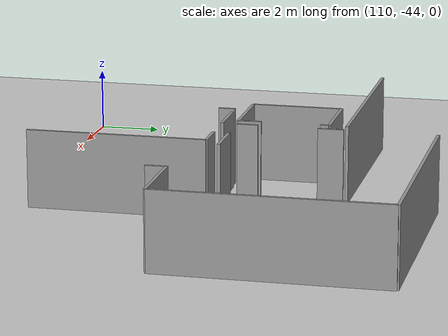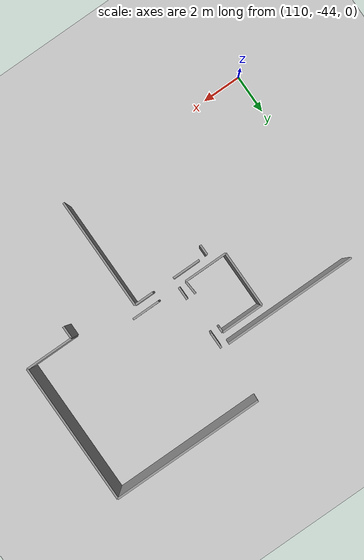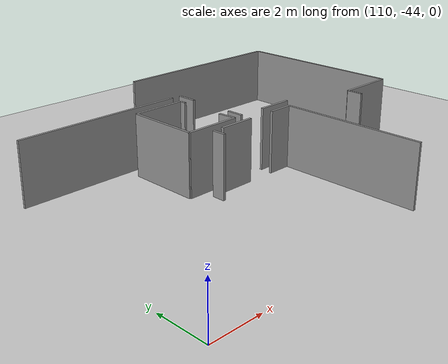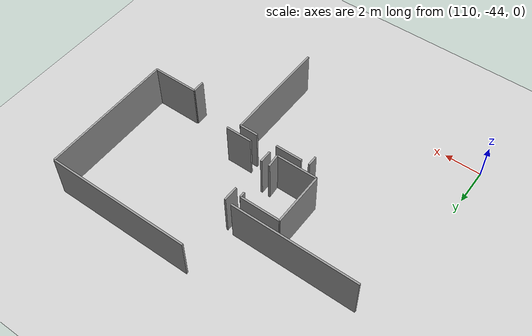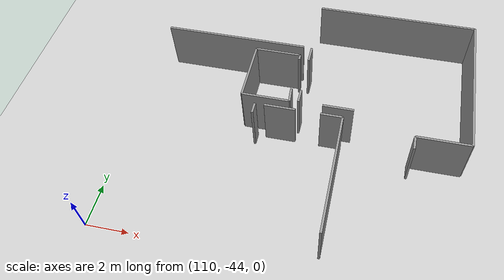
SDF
<sdf version="1.6">
 <world name="default">
  <model name="ground_plane">
   <static>1</static>
   <link name="link">
    <collision name="collision">
     <geometry><plane><normal>0 0 1</normal><size>100 100</size></plane></geometry>
     <surface><friction><ode><mu>100</mu><mu2>50</mu2></ode></friction></surface>
    </collision>
    <visual name="visual">
     <cast_shadows>0</cast_shadows>
     <geometry><plane><normal>0 0 1</normal><size>100 100</size></plane></geometry>
     <material>
      <script><uri>file://media/materials/scripts/gazebo.material</uri><name>Gazebo/Grey</name></script>
     </material>
    </visual>
   </link>
  </model>
  <model name="50015849">
   <static>1</static>
   <link name="Wall_59">
    <collision name="Wall_59_Collision">
     <geometry><box><size>6.86112010771 0.1 2.5</size></box></geometry>
     <pose>3.43056005385 0 1.25 0 0 0</pose>
    </collision>
    <visual name="Wall_59_Visual">
     <pose>3.43056005385 0 1.25 0 0 0</pose>
     <geometry><box><size>6.86112010771 0.1 2.5</size></box></geometry>
     <material>
      <script><uri>file://media/materials/scripts/gazebo.material</uri><name>Gazebo/Grey</name></script>
      <ambient>1 1 1 1</ambient>
     </material>
    </visual>
    <pose>243.819720957 -77.6431887316 0 0 0 3.14159265359</pose>
   </link>
   <link name="Wall_235">
    <collision name="Wall_235_Collision">
     <geometry><box><size>1.43522134796 0.1 2.5</size></box></geometry>
     <pose>0.717610673982 0 1.25 0 0 0</pose>
    </collision>
    <visual name="Wall_235_Visual">
     <pose>0.717610673982 0 1.25 0 0 0</pose>
     <geometry><box><size>1.43522134796 0.1 2.5</size></box></geometry>
     <material>
      <script><uri>file://media/materials/scripts/gazebo.material</uri><name>Gazebo/Grey</name></script>
      <ambient>1 1 1 1</ambient>
     </material>
    </visual>
    <pose>246.763829882 -81.0633339049 0 0 0 3.14159265359</pose>
   </link>
   <link name="Wall_236">
    <collision name="Wall_236_Collision">
     <geometry><box><size>0.674681044282 0.1 2.5</size></box></geometry>
     <pose>0.337340522141 0 1.25 0 0 0</pose>
    </collision>
    <visual name="Wall_236_Visual">
     <pose>0.337340522141 0 1.25 0 0 0</pose>
     <geometry><box><size>0.674681044282 0.1 2.5</size></box></geometry>
     <material>
      <script><uri>file://media/materials/scripts/gazebo.material</uri><name>Gazebo/Grey</name></script>
      <ambient>1 1 1 1</ambient>
     </material>
    </visual>
    <pose>244.208373818 -81.0633339049 0 0 0 1.57079632679</pose>
   </link>
   <link name="Wall_237">
    <collision name="Wall_237_Collision">
     <geometry><box><size>0.820743393854 0.1 2.5</size></box></geometry>
     <pose>0.410371696927 0 1.25 0 0 0</pose>
    </collision>
    <visual name="Wall_237_Visual">
     <pose>0.410371696927 0 1.25 0 0 0</pose>
     <geometry><box><size>0.820743393854 0.1 2.5</size></box></geometry>
     <material>
      <script><uri>file://media/materials/scripts/gazebo.material</uri><name>Gazebo/Grey</name></script>
      <ambient>1 1 1 1</ambient>
     </material>
    </visual>
    <pose>244.208373818 -78.4903503591 0 0 0 1.57079632679</pose>
   </link>
   <link name="Wall_238">
    <collision name="Wall_238_Collision">
     <geometry><box><size>7.83656258137 0.1 2.5</size></box></geometry>
     <pose>3.91828129068 0 1.25 0 0 0</pose>
    </collision>
    <visual name="Wall_238_Visual">
     <pose>3.91828129068 0 1.25 0 0 0</pose>
     <geometry><box><size>7.83656258137 0.1 2.5</size></box></geometry>
     <material>
      <script><uri>file://media/materials/scripts/gazebo.material</uri><name>Gazebo/Grey</name></script>
      <ambient>1 1 1 1</ambient>
     </material>
    </visual>
    <pose>244.208373818 -74.7267681482 0 0 0 0.0</pose>
   </link>
   <link name="Wall_239">
    <collision name="Wall_239_Collision">
     <geometry><box><size>7.24088221659 0.1 2.5</size></box></geometry>
     <pose>3.6204411083 0 1.25 0 0 0</pose>
    </collision>
    <visual name="Wall_239_Visual">
     <pose>3.6204411083 0 1.25 0 0 0</pose>
     <geometry><box><size>7.24088221659 0.1 2.5</size></box></geometry>
     <material>
      <script><uri>file://media/materials/scripts/gazebo.material</uri><name>Gazebo/Grey</name></script>
      <ambient>1 1 1 1</ambient>
     </material>
    </visual>
    <pose>252.044936399 -74.7267681482 0 0 0 -1.57079632679</pose>
   </link>
   <link name="Wall_240">
    <collision name="Wall_240_Collision">
     <geometry><box><size>2.46908876145 0.1 2.5</size></box></geometry>
     <pose>1.23454438073 0 1.25 0 0 0</pose>
    </collision>
    <visual name="Wall_240_Visual">
     <pose>1.23454438073 0 1.25 0 0 0</pose>
     <geometry><box><size>2.46908876145 0.1 2.5</size></box></geometry>
     <material>
      <script><uri>file://media/materials/scripts/gazebo.material</uri><name>Gazebo/Grey</name></script>
      <ambient>1 1 1 1</ambient>
     </material>
    </visual>
    <pose>252.044936399 -81.9676503648 0 0 0 3.14159265359</pose>
   </link>
   <link name="Wall_241">
    <collision name="Wall_241_Collision">
     <geometry><box><size>0.652581175738 0.1 2.5</size></box></geometry>
     <pose>0.326290587869 0 1.25 0 0 0</pose>
    </collision>
    <visual name="Wall_241_Visual">
     <pose>0.326290587869 0 1.25 0 0 0</pose>
     <geometry><box><size>0.652581175738 0.1 2.5</size></box></geometry>
     <material>
      <script><uri>file://media/materials/scripts/gazebo.material</uri><name>Gazebo/Grey</name></script>
      <ambient>1 1 1 1</ambient>
     </material>
    </visual>
    <pose>249.575847638 -81.9676503648 0 0 0 -1.57079632679</pose>
   </link>
   <link name="Wall_244">
    <collision name="Wall_244_Collision">
     <geometry><box><size>2.23792921692 0.1 2.5</size></box></geometry>
     <pose>1.11896460846 0 1.25 0 0 0</pose>
    </collision>
    <visual name="Wall_244_Visual">
     <pose>1.11896460846 0 1.25 0 0 0</pose>
     <geometry><box><size>2.23792921692 0.1 2.5</size></box></geometry>
     <material>
      <script><uri>file://media/materials/scripts/gazebo.material</uri><name>Gazebo/Grey</name></script>
      <ambient>1 1 1 1</ambient>
     </material>
    </visual>
    <pose>243.799399239 -81.1098198353 0 0 0 3.14159265359</pose>
   </link>
   <link name="Wall_245">
    <collision name="Wall_245_Collision">
     <geometry><box><size>2.89025637118 0.1 2.5</size></box></geometry>
     <pose>1.44512818559 0 1.25 0 0 0</pose>
    </collision>
    <visual name="Wall_245_Visual">
     <pose>1.44512818559 0 1.25 0 0 0</pose>
     <geometry><box><size>2.89025637118 0.1 2.5</size></box></geometry>
     <material>
      <script><uri>file://media/materials/scripts/gazebo.material</uri><name>Gazebo/Grey</name></script>
      <ambient>1 1 1 1</ambient>
     </material>
    </visual>
    <pose>241.561470022 -81.1098198353 0 0 0 1.57079632679</pose>
   </link>
   <link name="Wall_246">
    <collision name="Wall_246_Collision">
     <geometry><box><size>2.18458470664 0.1 2.5</size></box></geometry>
     <pose>1.09229235332 0 1.25 0 0 0</pose>
    </collision>
    <visual name="Wall_246_Visual">
     <pose>1.09229235332 0 1.25 0 0 0</pose>
     <geometry><box><size>2.18458470664 0.1 2.5</size></box></geometry>
     <material>
      <script><uri>file://media/materials/scripts/gazebo.material</uri><name>Gazebo/Grey</name></script>
      <ambient>1 1 1 1</ambient>
     </material>
    </visual>
    <pose>241.561470022 -78.2195634641 0 0 0 0.0</pose>
   </link>
   <link name="Wall_247">
    <collision name="Wall_247_Collision">
     <geometry><box><size>0.2801856897 0.1 2.5</size></box></geometry>
     <pose>0.14009284485 0 1.25 0 0 0</pose>
    </collision>
    <visual name="Wall_247_Visual">
     <pose>0.14009284485 0 1.25 0 0 0</pose>
     <geometry><box><size>0.2801856897 0.1 2.5</size></box></geometry>
     <material>
      <script><uri>file://media/materials/scripts/gazebo.material</uri><name>Gazebo/Grey</name></script>
      <ambient>1 1 1 1</ambient>
     </material>
    </visual>
    <pose>243.746054729 -78.2195634641 0 0 0 -1.57079632679</pose>
   </link>
   <link name="Wall_248">
    <collision name="Wall_248_Collision">
     <geometry><box><size>0.726937217163 0.1 2.5</size></box></geometry>
     <pose>0.363468608581 0 1.25 0 0 0</pose>
    </collision>
    <visual name="Wall_248_Visual">
     <pose>0.363468608581 0 1.25 0 0 0</pose>
     <geometry><box><size>0.726937217163 0.1 2.5</size></box></geometry>
     <material>
      <script><uri>file://media/materials/scripts/gazebo.material</uri><name>Gazebo/Grey</name></script>
      <ambient>1 1 1 1</ambient>
     </material>
    </visual>
    <pose>243.746054729 -80.3848425384 0 0 0 -1.49734775091</pose>
   </link>
   <link name="Wall_253">
    <collision name="Wall_253_Collision">
     <geometry><box><size>1.45046263662 0.1 2.5</size></box></geometry>
     <pose>0.725231318308 0 1.25 0 0 0</pose>
    </collision>
    <visual name="Wall_253_Visual">
     <pose>0.725231318308 0 1.25 0 0 0</pose>
     <geometry><box><size>1.45046263662 0.1 2.5</size></box></geometry>
     <material>
      <script><uri>file://media/materials/scripts/gazebo.material</uri><name>Gazebo/Grey</name></script>
      <ambient>1 1 1 1</ambient>
     </material>
    </visual>
    <pose>242.722348175 -81.5502930773 0 0 0 0.0</pose>
   </link>
   <link name="Wall_254">
    <collision name="Wall_254_Collision">
     <geometry><box><size>1.00846526574 0.1 2.5</size></box></geometry>
     <pose>0.504232632869 0 1.25 0 0 0</pose>
    </collision>
    <visual name="Wall_254_Visual">
     <pose>0.504232632869 0 1.25 0 0 0</pose>
     <geometry><box><size>1.00846526574 0.1 2.5</size></box></geometry>
     <material>
      <script><uri>file://media/materials/scripts/gazebo.material</uri><name>Gazebo/Grey</name></script>
      <ambient>1 1 1 1</ambient>
     </material>
    </visual>
    <pose>245.313367245 -81.5502930773 0 0 0 0.0</pose>
   </link>
   <link name="Wall_255">
    <collision name="Wall_255_Collision">
     <geometry><box><size>5.71065683604 0.1 2.5</size></box></geometry>
     <pose>2.85532841802 0 1.25 0 0 0</pose>
    </collision>
    <visual name="Wall_255_Visual">
     <pose>2.85532841802 0 1.25 0 0 0</pose>
     <geometry><box><size>5.71065683604 0.1 2.5</size></box></geometry>
     <material>
      <script><uri>file://media/materials/scripts/gazebo.material</uri><name>Gazebo/Grey</name></script>
      <ambient>1 1 1 1</ambient>
     </material>
    </visual>
    <pose>246.321832511 -81.5502930773 0 0 0 -1.57079632679</pose>
   </link>
   <link name="Wall_259">
    <collision name="Wall_259_Collision">
     <geometry><box><size>0.536747381991 0.1 2.5</size></box></geometry>
     <pose>0.268373690996 0 1.25 0 0 0</pose>
    </collision>
    <visual name="Wall_259_Visual">
     <pose>0.268373690996 0 1.25 0 0 0</pose>
     <geometry><box><size>0.536747381991 0.1 2.5</size></box></geometry>
     <material>
      <script><uri>file://media/materials/scripts/gazebo.material</uri><name>Gazebo/Grey</name></script>
      <ambient>1 1 1 1</ambient>
     </material>
    </visual>
    <pose>242.293051878 -81.5502930773 0 0 0 -1.57079632679</pose>
   </link>
   <pose>-126.05 43.7425752697 0 0 0 0</pose>
  </model>
 </world>
</sdf>
